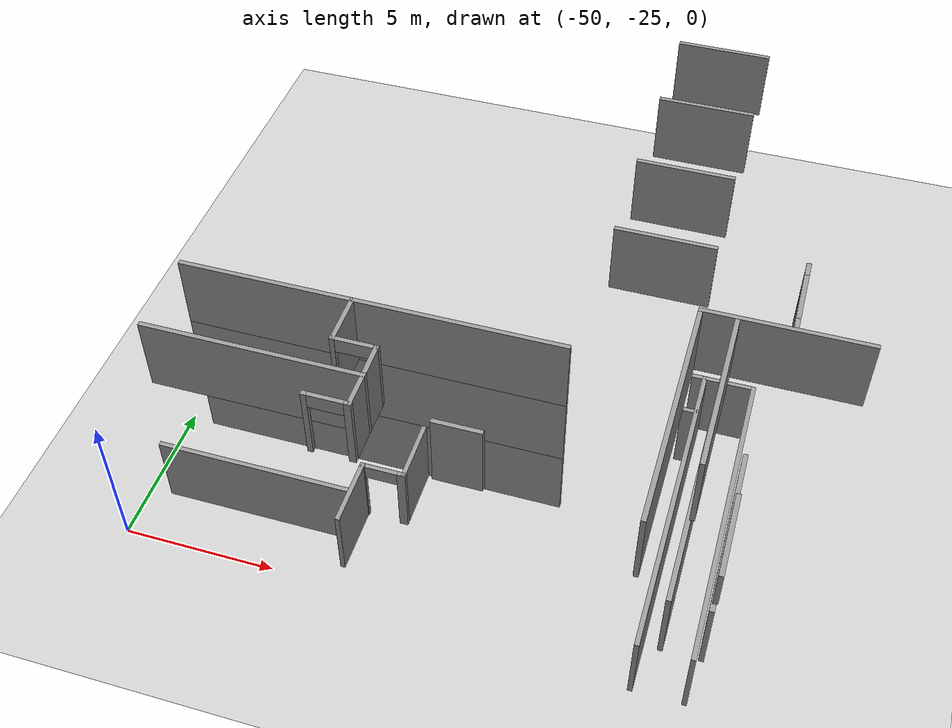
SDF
<sdf version="1.7">
 <world name="default">
  <model name="ground_plane">
   <static>1</static>
   <link name="link">
    <collision name="collision">
     <geometry><plane><normal>0 0 1</normal><size>100 100</size></plane></geometry>
     <surface><friction><ode><mu>100</mu><mu2>50</mu2></ode></friction></surface>
    </collision>
    <visual name="visual">
     <cast_shadows>0</cast_shadows>
     <geometry><plane><normal>0 0 1</normal><size>100 100</size></plane></geometry>
     <material>
      <script><uri>file://media/materials/scripts/gazebo.material</uri><name>Gazebo/Grey</name></script>
     </material>
    </visual>
   </link>
  </model>
  <model name="Anselm_Turmeda">
   <pose>-32.7988 -2.37459 0 0 -0 0</pose>
   <link name="Wall_13">
    <collision name="Wall_13_Collision">
     <geometry><box><size>12.25 0.15 2.5</size></box></geometry>
     <pose>0 0 1.25 0 -0 0</pose>
    </collision>
    <visual name="Wall_13_Visual">
     <pose>0 0 1.25 0 -0 0</pose>
     <geometry><box><size>12.25 0.15 2.5</size></box></geometry>
     <material>
      <script><uri>file://media/materials/scripts/gazebo.material</uri><name>Gazebo/Grey</name></script>
      <ambient>1 1 1 1</ambient>
     </material>
     <meta><layer>0</layer></meta>
    </visual>
    <pose>-10.3638 -17.6378 0 0 -0 3.14159</pose>
   </link>
   <link name="Wall_131">
    <collision name="Wall_131_Collision">
     <geometry><box><size>5.25 0.15 2.5</size></box></geometry>
     <pose>0 0 1.25 0 -0 0</pose>
    </collision>
    <visual name="Wall_131_Visual">
     <pose>0 0 1.25 0 -0 0</pose>
     <geometry><box><size>5.25 0.15 2.5</size></box></geometry>
     <material>
      <script><uri>file://media/materials/scripts/gazebo.material</uri><name>Gazebo/Grey</name></script>
      <ambient>1 1 1 1</ambient>
     </material>
     <meta><layer>2</layer></meta>
    </visual>
    <pose>1.57546 -15.0604 5 0 -0 3.14159</pose>
   </link>
   <link name="Wall_132">
    <collision name="Wall_132_Collision">
     <geometry><box><size>8 0.15 2.5</size></box></geometry>
     <pose>0 0 1.25 0 -0 0</pose>
    </collision>
    <visual name="Wall_132_Visual">
     <pose>0 0 1.25 0 -0 0</pose>
     <geometry><box><size>8 0.15 2.5</size></box></geometry>
     <material>
      <script><uri>file://media/materials/scripts/gazebo.material</uri><name>Gazebo/Grey</name></script>
      <ambient>1 1 1 1</ambient>
     </material>
     <meta><layer>2</layer></meta>
    </visual>
    <pose>-0.974545 -18.9854 5 0 -0 -1.5708</pose>
   </link>
   <link name="Wall_146">
    <collision name="Wall_146_Collision">
     <geometry><box><size>10.5 0.15 2.5</size></box></geometry>
     <pose>0 0 1.25 0 -0 0</pose>
    </collision>
    <visual name="Wall_146_Visual">
     <pose>0 0 1.25 0 -0 0</pose>
     <geometry><box><size>10.5 0.15 2.5</size></box></geometry>
     <material>
      <script><uri>file://media/materials/scripts/gazebo.material</uri><name>Gazebo/Grey</name></script>
      <ambient>1 1 1 1</ambient>
     </material>
     <meta><layer>0</layer></meta>
    </visual>
    <pose>0.979076 -18.2424 0 0 -0 1.5708</pose>
   </link>
   <link name="Wall_147">
    <collision name="Wall_147_Collision">
     <geometry><box><size>1.75 0.15 2.5</size></box></geometry>
     <pose>0 0 1.25 0 -0 0</pose>
    </collision>
    <visual name="Wall_147_Visual">
     <pose>0 0 1.25 0 -0 0</pose>
     <geometry><box><size>1.75 0.15 2.5</size></box></geometry>
     <material>
      <script><uri>file://media/materials/scripts/gazebo.material</uri><name>Gazebo/Grey</name></script>
      <ambient>1 1 1 1</ambient>
     </material>
     <meta><layer>0</layer></meta>
    </visual>
    <pose>0.179073 -13.0674 0 0 -0 3.14159</pose>
   </link>
   <link name="Wall_148">
    <collision name="Wall_148_Collision">
     <geometry><box><size>10.5 0.15 2.5</size></box></geometry>
     <pose>0 0 1.25 0 -0 0</pose>
    </collision>
    <visual name="Wall_148_Visual">
     <pose>0 0 1.25 0 -0 0</pose>
     <geometry><box><size>10.5 0.15 2.5</size></box></geometry>
     <material>
      <script><uri>file://media/materials/scripts/gazebo.material</uri><name>Gazebo/Grey</name></script>
      <ambient>1 1 1 1</ambient>
     </material>
     <meta><layer>0</layer></meta>
    </visual>
    <pose>-0.620926 -18.2424 0 0 -0 -1.5708</pose>
   </link>
   <link name="Wall_157">
    <collision name="Wall_157_Collision">
     <geometry><box><size>5.75 0.15 2.5</size></box></geometry>
     <pose>0 0 1.25 0 -0 0</pose>
    </collision>
    <visual name="Wall_157_Visual">
     <pose>0 0 1.25 0 -0 0</pose>
     <geometry><box><size>5.75 0.15 2.5</size></box></geometry>
     <material>
      <script><uri>file://media/materials/scripts/gazebo.material</uri><name>Gazebo/Grey</name></script>
      <ambient>1 1 1 1</ambient>
     </material>
     <meta><layer>2</layer></meta>
    </visual>
    <pose>0.125454 -17.8604 5 0 -0 1.5708</pose>
   </link>
   <link name="Wall_169">
    <collision name="Wall_169_Collision">
     <geometry><box><size>8.25 0.15 2.5</size></box></geometry>
     <pose>0 0 1.25 0 -0 0</pose>
    </collision>
    <visual name="Wall_169_Visual">
     <pose>0 0 1.25 0 -0 0</pose>
     <geometry><box><size>8.25 0.15 2.5</size></box></geometry>
     <material>
      <script><uri>file://media/materials/scripts/gazebo.material</uri><name>Gazebo/Grey</name></script>
      <ambient>1 1 1 1</ambient>
     </material>
     <meta><layer>1</layer></meta>
    </visual>
    <pose>0.022308 -19.3383 2.5 0 -0 -1.5708</pose>
   </link>
   <link name="Wall_172">
    <collision name="Wall_172_Collision">
     <geometry><box><size>5.5 0.15 2.5</size></box></geometry>
     <pose>0 0 1.25 0 -0 0</pose>
    </collision>
    <visual name="Wall_172_Visual">
     <pose>0 0 1.25 0 -0 0</pose>
     <geometry><box><size>5.5 0.15 2.5</size></box></geometry>
     <material>
      <script><uri>file://media/materials/scripts/gazebo.material</uri><name>Gazebo/Grey</name></script>
      <ambient>1 1 1 1</ambient>
     </material>
     <meta><layer>1</layer></meta>
    </visual>
    <pose>1.17231 -20.7133 2.5 0 -0 1.5708</pose>
   </link>
   <link name="Wall_280">
    <collision name="Wall_280_Collision">
     <geometry><box><size>1.5 0.15 2.5</size></box></geometry>
     <pose>0 0 1.25 0 -0 0</pose>
    </collision>
    <visual name="Wall_280_Visual">
     <pose>0 0 1.25 0 -0 0</pose>
     <geometry><box><size>1.5 0.15 2.5</size></box></geometry>
     <material>
      <script><uri>file://media/materials/scripts/gazebo.material</uri><name>Gazebo/Grey</name></script>
      <ambient>1 1 1 1</ambient>
     </material>
     <meta><layer>2</layer></meta>
    </visual>
    <pose>-6.45242 -21.3708 5 0 -0 3.14159</pose>
   </link>
   <link name="Wall_305">
    <collision name="Wall_305_Collision">
     <geometry><box><size>3.25 0.15 2.5</size></box></geometry>
     <pose>0 0 1.25 0 -0 0</pose>
    </collision>
    <visual name="Wall_305_Visual">
     <pose>0 0 1.25 0 -0 0</pose>
     <geometry><box><size>3.25 0.15 2.5</size></box></geometry>
     <material>
      <script><uri>file://media/materials/scripts/gazebo.material</uri><name>Gazebo/Grey</name></script>
      <ambient>1 1 1 1</ambient>
     </material>
     <meta><layer>2</layer></meta>
    </visual>
    <pose>-2.58508 -12.2866 5 0 -0 3.14159</pose>
   </link>
   <link name="Wall_307">
    <collision name="Wall_307_Collision">
     <geometry><box><size>7 0.15 2.5</size></box></geometry>
     <pose>0 0 1.25 0 -0 0</pose>
    </collision>
    <visual name="Wall_307_Visual">
     <pose>0 0 1.25 0 -0 0</pose>
     <geometry><box><size>7 0.15 2.5</size></box></geometry>
     <material>
      <script><uri>file://media/materials/scripts/gazebo.material</uri><name>Gazebo/Grey</name></script>
      <ambient>1 1 1 1</ambient>
     </material>
     <meta><layer>2</layer></meta>
    </visual>
    <pose>-12.9612 -20.3522 5 0 -0 0</pose>
   </link>
   <link name="Wall_308">
    <collision name="Wall_308_Collision">
     <geometry><box><size>1.25 0.15 2.5</size></box></geometry>
     <pose>0 0 1.25 0 -0 0</pose>
    </collision>
    <visual name="Wall_308_Visual">
     <pose>0 0 1.25 0 -0 0</pose>
     <geometry><box><size>1.25 0.15 2.5</size></box></geometry>
     <material>
      <script><uri>file://media/materials/scripts/gazebo.material</uri><name>Gazebo/Grey</name></script>
      <ambient>1 1 1 1</ambient>
     </material>
     <meta><layer>2</layer></meta>
    </visual>
    <pose>-9.53622 -19.8022 5 0 -0 1.5708</pose>
   </link>
   <link name="Wall_310">
    <pose>-10.2112 -19.2522 5 0 -0 3.14159</pose>
    <visual name="Wall_310_Visual_0">
     <pose>-0.666918 0 1.25 0 -0 0</pose>
     <geometry><box><size>0.166163 0.15 2.5</size></box></geometry>
     <material>
      <script><uri>file://media/materials/scripts/gazebo.material</uri><name>Gazebo/Grey</name></script>
      <ambient>1 1 1 1</ambient>
     </material>
     <meta><layer>2</layer></meta>
    </visual>
    <collision name="Wall_310_Collision_0">
     <geometry><box><size>0.166163 0.15 2.5</size></box></geometry>
     <pose>-0.666918 0 1.25 0 -0 0</pose>
    </collision>
    <visual name="Wall_310_Visual_1">
     <pose>0.67253 0 1.25 0 -0 0</pose>
     <geometry><box><size>0.15494 0.15 2.5</size></box></geometry>
     <material>
      <script><uri>file://media/materials/scripts/gazebo.material</uri><name>Gazebo/Grey</name></script>
      <ambient>1 1 1 1</ambient>
     </material>
     <meta><layer>2</layer></meta>
    </visual>
    <collision name="Wall_310_Collision_1">
     <geometry><box><size>0.15494 0.15 2.5</size></box></geometry>
     <pose>0.67253 0 1.25 0 -0 0</pose>
    </collision>
    <visual name="Wall_310_Visual_2">
     <pose>0.005611 0 2.25 0 -0 0</pose>
     <geometry><box><size>1.1789 0.15 0.5</size></box></geometry>
     <material>
      <script><uri>file://media/materials/scripts/gazebo.material</uri><name>Gazebo/Grey</name></script>
      <ambient>1 1 1 1</ambient>
     </material>
     <meta><layer>2</layer></meta>
    </visual>
    <collision name="Wall_310_Collision_2">
     <geometry><box><size>1.1789 0.15 0.5</size></box></geometry>
     <pose>0.005611 0 2.25 0 -0 0</pose>
    </collision>
   </link>
   <link name="Wall_311">
    <collision name="Wall_311_Collision">
     <geometry><box><size>1.75 0.15 2.5</size></box></geometry>
     <pose>0 0 1.25 0 -0 0</pose>
    </collision>
    <visual name="Wall_311_Visual">
     <pose>0 0 1.25 0 -0 0</pose>
     <geometry><box><size>1.75 0.15 2.5</size></box></geometry>
     <material>
      <script><uri>file://media/materials/scripts/gazebo.material</uri><name>Gazebo/Grey</name></script>
      <ambient>1 1 1 1</ambient>
     </material>
     <meta><layer>2</layer></meta>
    </visual>
    <pose>-10.8862 -18.4522 5 0 -0 1.5708</pose>
   </link>
   <link name="Wall_313">
    <collision name="Wall_313_Collision">
     <geometry><box><size>1.25 0.15 2.5</size></box></geometry>
     <pose>0 0 1.25 0 -0 0</pose>
    </collision>
    <visual name="Wall_313_Visual">
     <pose>0 0 1.25 0 -0 0</pose>
     <geometry><box><size>1.25 0.15 2.5</size></box></geometry>
     <material>
      <script><uri>file://media/materials/scripts/gazebo.material</uri><name>Gazebo/Grey</name></script>
      <ambient>1 1 1 1</ambient>
     </material>
     <meta><layer>2</layer></meta>
    </visual>
    <pose>-9.53622 -20.9022 5 0 -0 -1.5708</pose>
   </link>
   <link name="Wall_314">
    <pose>-10.2112 -21.4522 5 0 -0 3.14159</pose>
    <visual name="Wall_314_Visual_0">
     <pose>-0.639029 0 1.25 0 -0 0</pose>
     <geometry><box><size>0.221942 0.15 2.5</size></box></geometry>
     <material>
      <script><uri>file://media/materials/scripts/gazebo.material</uri><name>Gazebo/Grey</name></script>
      <ambient>1 1 1 1</ambient>
     </material>
     <meta><layer>2</layer></meta>
    </visual>
    <collision name="Wall_314_Collision_0">
     <geometry><box><size>0.221942 0.15 2.5</size></box></geometry>
     <pose>-0.639029 0 1.25 0 -0 0</pose>
    </collision>
    <visual name="Wall_314_Visual_1">
     <pose>0.663233 0 1.25 0 -0 0</pose>
     <geometry><box><size>0.173534 0.15 2.5</size></box></geometry>
     <material>
      <script><uri>file://media/materials/scripts/gazebo.material</uri><name>Gazebo/Grey</name></script>
      <ambient>1 1 1 1</ambient>
     </material>
     <meta><layer>2</layer></meta>
    </visual>
    <collision name="Wall_314_Collision_1">
     <geometry><box><size>0.173534 0.15 2.5</size></box></geometry>
     <pose>0.663233 0 1.25 0 -0 0</pose>
    </collision>
    <visual name="Wall_314_Visual_2">
     <pose>0.024204 0 2.25 0 -0 0</pose>
     <geometry><box><size>1.10452 0.15 0.5</size></box></geometry>
     <material>
      <script><uri>file://media/materials/scripts/gazebo.material</uri><name>Gazebo/Grey</name></script>
      <ambient>1 1 1 1</ambient>
     </material>
     <meta><layer>2</layer></meta>
    </visual>
    <collision name="Wall_314_Collision_2">
     <geometry><box><size>1.10452 0.15 0.5</size></box></geometry>
     <pose>0.024204 0 2.25 0 -0 0</pose>
    </collision>
   </link>
   <link name="Wall_319">
    <collision name="Wall_319_Collision">
     <geometry><box><size>3.25 0.15 2.5</size></box></geometry>
     <pose>0 0 1.25 0 -0 0</pose>
    </collision>
    <visual name="Wall_319_Visual">
     <pose>0 0 1.25 0 -0 0</pose>
     <geometry><box><size>3.25 0.15 2.5</size></box></geometry>
     <material>
      <script><uri>file://media/materials/scripts/gazebo.material</uri><name>Gazebo/Grey</name></script>
      <ambient>1 1 1 1</ambient>
     </material>
     <meta><layer>2</layer></meta>
    </visual>
    <pose>-2.62988 -8.82691 5 0 -0 3.14159</pose>
   </link>
   <link name="Wall_321">
    <collision name="Wall_321_Collision">
     <geometry><box><size>3.25 0.15 2.5</size></box></geometry>
     <pose>0 0 1.25 0 -0 0</pose>
    </collision>
    <visual name="Wall_321_Visual">
     <pose>0 0 1.25 0 -0 0</pose>
     <geometry><box><size>3.25 0.15 2.5</size></box></geometry>
     <material>
      <script><uri>file://media/materials/scripts/gazebo.material</uri><name>Gazebo/Grey</name></script>
      <ambient>1 1 1 1</ambient>
     </material>
     <meta><layer>2</layer></meta>
    </visual>
    <pose>-2.59737 -5.28229 5 0 -0 3.14159</pose>
   </link>
   <link name="Wall_323">
    <collision name="Wall_323_Collision">
     <geometry><box><size>3.25 0.15 2.5</size></box></geometry>
     <pose>0 0 1.25 0 -0 0</pose>
    </collision>
    <visual name="Wall_323_Visual">
     <pose>0 0 1.25 0 -0 0</pose>
     <geometry><box><size>3.25 0.15 2.5</size></box></geometry>
     <material>
      <script><uri>file://media/materials/scripts/gazebo.material</uri><name>Gazebo/Grey</name></script>
      <ambient>1 1 1 1</ambient>
     </material>
     <meta><layer>2</layer></meta>
    </visual>
    <pose>-2.59737 -1.77019 5 0 -0 3.14159</pose>
   </link>
   <link name="Wall_362">
    <pose>1.80373 -13.6081 5 0 -0 -1.5708</pose>
    <visual name="Wall_362_Visual_0">
     <pose>-1.18406 0 1.25 0 -0 0</pose>
     <geometry><box><size>0.531877 0.15 2.5</size></box></geometry>
     <material>
      <script><uri>file://media/materials/scripts/gazebo.material</uri><name>Gazebo/Grey</name></script>
      <ambient>1 1 1 1</ambient>
     </material>
     <meta><layer>2</layer></meta>
    </visual>
    <collision name="Wall_362_Collision_0">
     <geometry><box><size>0.531877 0.15 2.5</size></box></geometry>
     <pose>-1.18406 0 1.25 0 -0 0</pose>
    </collision>
    <visual name="Wall_362_Visual_1">
     <pose>1.22002 0 1.25 0 -0 0</pose>
     <geometry><box><size>0.459959 0.15 2.5</size></box></geometry>
     <material>
      <script><uri>file://media/materials/scripts/gazebo.material</uri><name>Gazebo/Grey</name></script>
      <ambient>1 1 1 1</ambient>
     </material>
     <meta><layer>2</layer></meta>
    </visual>
    <collision name="Wall_362_Collision_1">
     <geometry><box><size>0.459959 0.15 2.5</size></box></geometry>
     <pose>1.22002 0 1.25 0 -0 0</pose>
    </collision>
    <visual name="Wall_362_Visual_2">
     <pose>0.035959 0 2.25 0 -0 0</pose>
     <geometry><box><size>1.90816 0.15 0.5</size></box></geometry>
     <material>
      <script><uri>file://media/materials/scripts/gazebo.material</uri><name>Gazebo/Grey</name></script>
      <ambient>1 1 1 1</ambient>
     </material>
     <meta><layer>2</layer></meta>
    </visual>
    <collision name="Wall_362_Collision_2">
     <geometry><box><size>1.90816 0.15 0.5</size></box></geometry>
     <pose>0.035959 0 2.25 0 -0 0</pose>
    </collision>
   </link>
   <link name="Wall_38">
    <collision name="Wall_38_Collision">
     <geometry><box><size>12.25 0.15 2.5</size></box></geometry>
     <pose>0 0 1.25 0 -0 0</pose>
    </collision>
    <visual name="Wall_38_Visual">
     <pose>0 0 1.25 0 -0 0</pose>
     <geometry><box><size>12.25 0.15 2.5</size></box></geometry>
     <material>
      <script><uri>file://media/materials/scripts/gazebo.material</uri><name>Gazebo/Grey</name></script>
      <ambient>1 1 1 1</ambient>
     </material>
     <meta><layer>1</layer></meta>
    </visual>
    <pose>-10.3638 -17.6378 2.5 0 -0 3.14159</pose>
   </link>
   <link name="Wall_458">
    <collision name="Wall_458_Collision">
     <geometry><box><size>2.25 0.15 2.5</size></box></geometry>
     <pose>0 0 1.25 0 -0 0</pose>
    </collision>
    <visual name="Wall_458_Visual">
     <pose>0 0 1.25 0 -0 0</pose>
     <geometry><box><size>2.25 0.15 2.5</size></box></geometry>
     <material>
      <script><uri>file://media/materials/scripts/gazebo.material</uri><name>Gazebo/Grey</name></script>
      <ambient>1 1 1 1</ambient>
     </material>
     <meta><layer>0</layer></meta>
    </visual>
    <pose>-8.7803 -18.6839 0 0 -0 -1.5708</pose>
   </link>
   <link name="Wall_459">
    <pose>-9.4553 -19.7339 0 0 -0 3.14159</pose>
    <visual name="Wall_459_Visual_0">
     <pose>-0.611341 0 1.25 0 -0 0</pose>
     <geometry><box><size>0.277317 0.15 2.5</size></box></geometry>
     <material>
      <script><uri>file://media/materials/scripts/gazebo.material</uri><name>Gazebo/Grey</name></script>
      <ambient>1 1 1 1</ambient>
     </material>
     <meta><layer>0</layer></meta>
    </visual>
    <collision name="Wall_459_Collision_0">
     <geometry><box><size>0.277317 0.15 2.5</size></box></geometry>
     <pose>-0.611341 0 1.25 0 -0 0</pose>
    </collision>
    <visual name="Wall_459_Visual_1">
     <pose>0.662611 0 1.25 0 -0 0</pose>
     <geometry><box><size>0.174778 0.15 2.5</size></box></geometry>
     <material>
      <script><uri>file://media/materials/scripts/gazebo.material</uri><name>Gazebo/Grey</name></script>
      <ambient>1 1 1 1</ambient>
     </material>
     <meta><layer>0</layer></meta>
    </visual>
    <collision name="Wall_459_Collision_1">
     <geometry><box><size>0.174778 0.15 2.5</size></box></geometry>
     <pose>0.662611 0 1.25 0 -0 0</pose>
    </collision>
    <visual name="Wall_459_Visual_2">
     <pose>0.05127 0 2.25 0 -0 0</pose>
     <geometry><box><size>1.04791 0.15 0.5</size></box></geometry>
     <material>
      <script><uri>file://media/materials/scripts/gazebo.material</uri><name>Gazebo/Grey</name></script>
      <ambient>1 1 1 1</ambient>
     </material>
     <meta><layer>0</layer></meta>
    </visual>
    <collision name="Wall_459_Collision_2">
     <geometry><box><size>1.04791 0.15 0.5</size></box></geometry>
     <pose>0.05127 0 2.25 0 -0 0</pose>
    </collision>
   </link>
   <link name="Wall_460">
    <collision name="Wall_460_Collision">
     <geometry><box><size>2.25 0.15 2.5</size></box></geometry>
     <pose>0 0 1.25 0 -0 0</pose>
    </collision>
    <visual name="Wall_460_Visual">
     <pose>0 0 1.25 0 -0 0</pose>
     <geometry><box><size>2.25 0.15 2.5</size></box></geometry>
     <material>
      <script><uri>file://media/materials/scripts/gazebo.material</uri><name>Gazebo/Grey</name></script>
      <ambient>1 1 1 1</ambient>
     </material>
     <meta><layer>0</layer></meta>
    </visual>
    <pose>-10.1303 -20.7839 0 0 -0 -1.5708</pose>
   </link>
   <link name="Wall_470">
    <collision name="Wall_470_Collision">
     <geometry><box><size>6.4 0.15 2.5</size></box></geometry>
     <pose>0 0 1.25 0 -0 0</pose>
    </collision>
    <visual name="Wall_470_Visual">
     <pose>0 0 1.25 0 -0 0</pose>
     <geometry><box><size>6.4 0.15 2.5</size></box></geometry>
     <material>
      <script><uri>file://media/materials/scripts/gazebo.material</uri><name>Gazebo/Grey</name></script>
      <ambient>1 1 1 1</ambient>
     </material>
     <meta><layer>0</layer></meta>
    </visual>
    <pose>-13.3213 -20.7773 0 0 -0 0</pose>
   </link>
   <link name="Wall_495">
    <collision name="Wall_495_Collision">
     <geometry><box><size>0.5 0.15 2.5</size></box></geometry>
     <pose>0 0 1.25 0 -0 0</pose>
    </collision>
    <visual name="Wall_495_Visual">
     <pose>0 0 1.25 0 -0 0</pose>
     <geometry><box><size>0.5 0.15 2.5</size></box></geometry>
     <material>
      <script><uri>file://media/materials/scripts/gazebo.material</uri><name>Gazebo/Grey</name></script>
      <ambient>1 1 1 1</ambient>
     </material>
     <meta><layer>0</layer></meta>
    </visual>
    <pose>-0.847519 -14.5864 0 0 -0 3.14159</pose>
   </link>
   <link name="Wall_497">
    <collision name="Wall_497_Collision">
     <geometry><box><size>0.5 0.15 2.5</size></box></geometry>
     <pose>0 0 1.25 0 -0 0</pose>
    </collision>
    <visual name="Wall_497_Visual">
     <pose>0 0 1.25 0 -0 0</pose>
     <geometry><box><size>0.5 0.15 2.5</size></box></geometry>
     <material>
      <script><uri>file://media/materials/scripts/gazebo.material</uri><name>Gazebo/Grey</name></script>
      <ambient>1 1 1 1</ambient>
     </material>
     <meta><layer>0</layer></meta>
    </visual>
    <pose>-0.795925 -13.0674 0 0 -0 3.14159</pose>
   </link>
   <link name="Wall_60">
    <collision name="Wall_60_Collision">
     <geometry><box><size>12.25 0.15 2.5</size></box></geometry>
     <pose>0 0 1.25 0 -0 0</pose>
    </collision>
    <visual name="Wall_60_Visual">
     <pose>0 0 1.25 0 -0 0</pose>
     <geometry><box><size>12.25 0.15 2.5</size></box></geometry>
     <material>
      <script><uri>file://media/materials/scripts/gazebo.material</uri><name>Gazebo/Grey</name></script>
      <ambient>1 1 1 1</ambient>
     </material>
     <meta><layer>2</layer></meta>
    </visual>
    <pose>-10.3638 -17.6378 5 0 -0 3.14159</pose>
   </link>
   <link name="Wall_694">
    <collision name="Wall_694_Collision">
     <geometry><box><size>2.75 0.15 1.3</size></box></geometry>
     <pose>0 0 0.65 0 -0 0</pose>
    </collision>
    <visual name="Wall_694_Visual">
     <pose>0 0 0.65 0 -0 0</pose>
     <geometry><box><size>2.75 0.15 1.3</size></box></geometry>
     <material>
      <script><uri>file://media/materials/scripts/gazebo.material</uri><name>Gazebo/Grey</name></script>
      <ambient>1 1 1 1</ambient>
     </material>
     <meta><layer>2</layer></meta>
    </visual>
    <pose>1.20959 -21.8338 5 0 -0 1.5708</pose>
   </link>
   <static>1</static>
  </model>
 </world>
</sdf>
